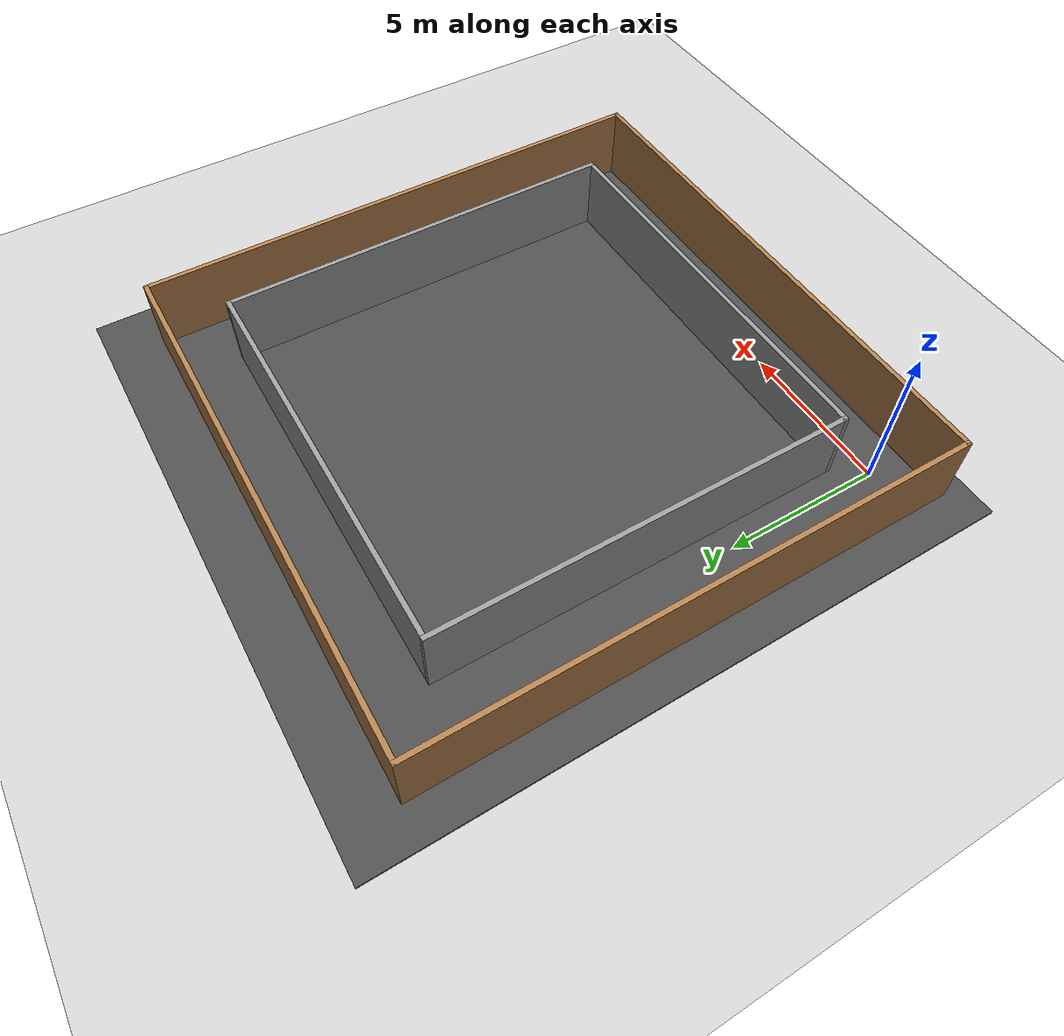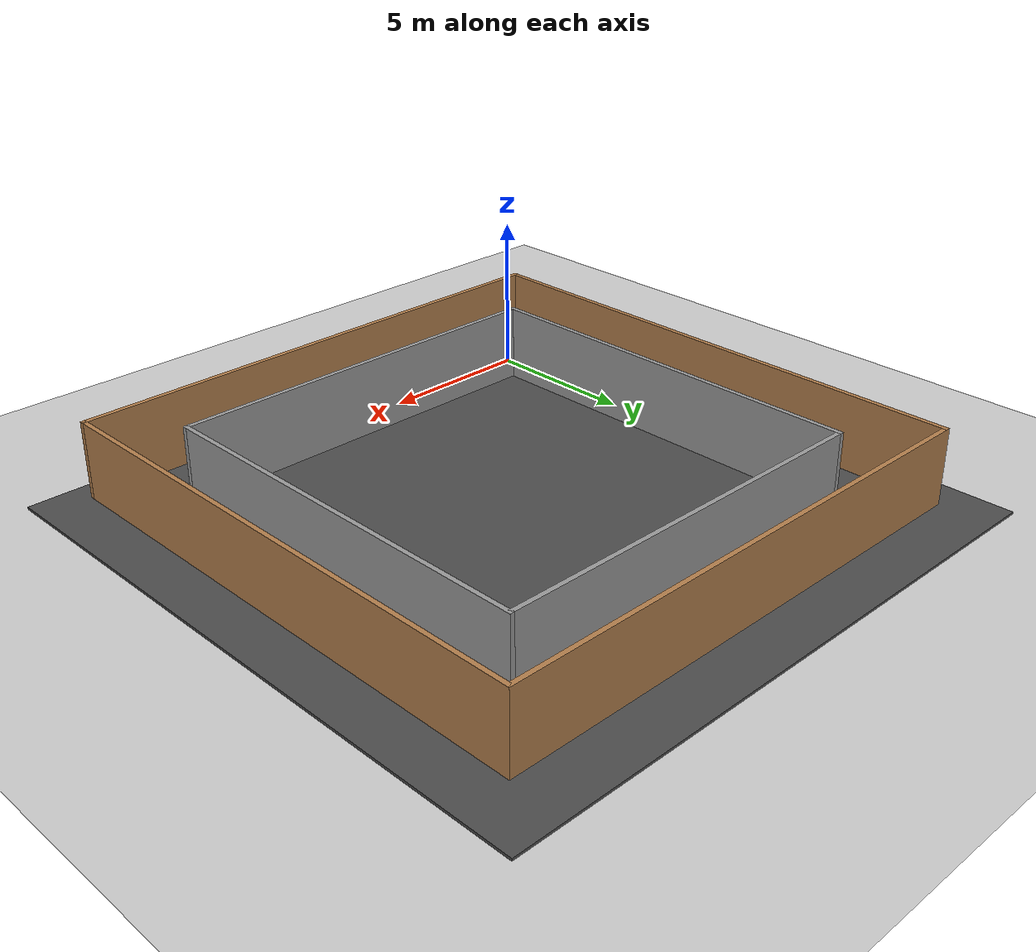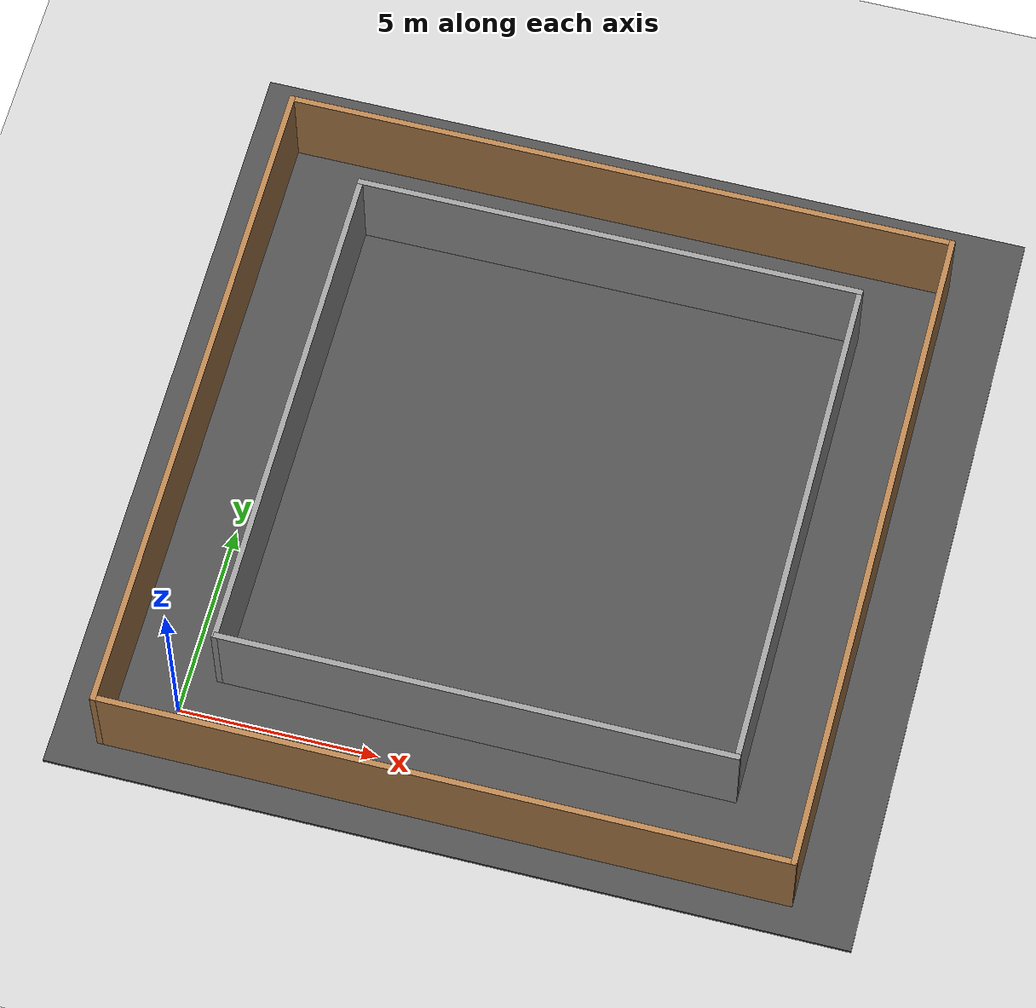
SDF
<sdf version="1.7">
 <world name="default">
  <light name="sun" type="directional">
   <pose>0 0 10 0 -0 0</pose>
   <diffuse>0.8 0.8 0.8 1</diffuse>
   <specular>0.2 0.2 0.2 1</specular>
   <attenuation>
    <range>1000</range>
    <constant>0.9</constant>
    <linear>0.01</linear>
    <quadratic>0.001</quadratic>
   </attenuation>
   <direction>-0.5 0.1 -0.9</direction>
   <spot><inner_angle>0</inner_angle><outer_angle>0</outer_angle><falloff>0</falloff></spot>
  </light>
  <model name="ground_plane">
   <static>1</static>
   <link name="link">
    <collision name="collision">
     <geometry><plane><normal>0 0 1</normal><size>100 100</size></plane></geometry>
     <surface>
      <contact><collide_bitmask>65535</collide_bitmask></contact>
      <friction><ode><mu>100</mu><mu2>50</mu2></ode></friction>
     </surface>
    </collision>
    <visual name="visual">
     <cast_shadows>0</cast_shadows>
     <geometry><plane><normal>0 0 1</normal><size>100 100</size></plane></geometry>
     <material>
      <script><uri>file://media/materials/scripts/gazebo.material</uri><name>Gazebo/Grey</name></script>
     </material>
    </visual>
   </link>
  </model>
  <gravity>0 0 -9.8</gravity>
  <magnetic_field>6e-06 2.3e-05 -4.2e-05</magnetic_field>
  <atmosphere type="adiabatic"/>
  <physics type="ode">
   <max_step_size>0.001</max_step_size>
   <real_time_factor>1</real_time_factor>
   <real_time_update_rate>1000</real_time_update_rate>
  </physics>
  <scene><ambient>0.4 0.4 0.4 1</ambient><background>0.7 0.7 0.7 1</background><shadows>1</shadows></scene>
  <spherical_coordinates>
   <surface_model>EARTH_WGS84</surface_model>
   <latitude_deg>0</latitude_deg>
   <longitude_deg>0</longitude_deg>
   <elevation>0</elevation>
   <heading_deg>0</heading_deg>
  </spherical_coordinates>
  <model name="square">
   <pose>10.6631 3.367 0 0 -0 0</pose>
   <link name="Wall_1">
    <collision name="Wall_1_Collision">
     <geometry><box><size>17.5 0.15 2.5</size></box></geometry>
     <pose>0 0 1.25 0 -0 0</pose>
    </collision>
    <visual name="Wall_1_Visual">
     <pose>0 0 1.25 0 -0 0</pose>
     <geometry><box><size>17.5 0.15 2.5</size></box></geometry>
     <material>
      <script><uri>file://media/materials/scripts/gazebo.material</uri><name>Gazebo/Wood</name></script>
      <ambient>1 1 1 1</ambient>
     </material>
     <meta><layer>0</layer></meta>
    </visual>
    <pose>4.85124 4.03127 0 0 -0 -1.5708</pose>
   </link>
   <link name="Wall_10">
    <collision name="Wall_10_Collision">
     <geometry><box><size>13.25 0.15 2.5</size></box></geometry>
     <pose>0 0 1.25 0 -0 0</pose>
    </collision>
    <visual name="Wall_10_Visual">
     <pose>0 0 1.25 0 -0 0</pose>
     <geometry><box><size>13.25 0.15 2.5</size></box></geometry>
     <material>
      <script><uri>file://media/materials/scripts/gazebo.material</uri><name>Gazebo/Grey</name></script>
      <ambient>1 1 1 1</ambient>
     </material>
     <meta><layer>0</layer></meta>
    </visual>
    <pose>-9.91213 4.21152 0 0 -0 1.5708</pose>
   </link>
   <link name="Wall_2">
    <collision name="Wall_2_Collision">
     <geometry><box><size>17.25 0.15 2.5</size></box></geometry>
     <pose>0 0 1.25 0 -0 0</pose>
    </collision>
    <visual name="Wall_2_Visual">
     <pose>0 0 1.25 0 -0 0</pose>
     <geometry><box><size>17.25 0.15 2.5</size></box></geometry>
     <material>
      <script><uri>file://media/materials/scripts/gazebo.material</uri><name>Gazebo/Wood</name></script>
      <ambient>1 1 1 1</ambient>
     </material>
     <meta><layer>0</layer></meta>
    </visual>
    <pose>-3.69876 -4.64372 0 0 -0 3.14159</pose>
   </link>
   <link name="Wall_3">
    <collision name="Wall_3_Collision">
     <geometry><box><size>17.5 0.15 2.5</size></box></geometry>
     <pose>0 0 1.25 0 -0 0</pose>
    </collision>
    <visual name="Wall_3_Visual">
     <pose>0 0 1.25 0 -0 0</pose>
     <geometry><box><size>17.5 0.15 2.5</size></box></geometry>
     <material>
      <script><uri>file://media/materials/scripts/gazebo.material</uri><name>Gazebo/Wood</name></script>
      <ambient>1 1 1 1</ambient>
     </material>
     <meta><layer>0</layer></meta>
    </visual>
    <pose>-12.2488 4.03127 0 0 -0 1.5708</pose>
   </link>
   <link name="Wall_5">
    <collision name="Wall_5_Collision">
     <geometry><box><size>17.25 0.15 2.5</size></box></geometry>
     <pose>0 0 1.25 0 -0 0</pose>
    </collision>
    <visual name="Wall_5_Visual">
     <pose>0 0 1.25 0 -0 0</pose>
     <geometry><box><size>17.25 0.15 2.5</size></box></geometry>
     <material>
      <script><uri>file://media/materials/scripts/gazebo.material</uri><name>Gazebo/Wood</name></script>
      <ambient>1 1 1 1</ambient>
     </material>
     <meta><layer>0</layer></meta>
    </visual>
    <pose>-3.69876 12.7063 0 0 -0 0</pose>
   </link>
   <link name="Wall_7">
    <collision name="Wall_7_Collision">
     <geometry><box><size>13 0.15 2.5</size></box></geometry>
     <pose>0 0 1.25 0 -0 0</pose>
    </collision>
    <visual name="Wall_7_Visual">
     <pose>0 0 1.25 0 -0 0</pose>
     <geometry><box><size>13 0.15 2.5</size></box></geometry>
     <material>
      <script><uri>file://media/materials/scripts/gazebo.material</uri><name>Gazebo/Grey</name></script>
      <ambient>1 1 1 1</ambient>
     </material>
     <meta><layer>0</layer></meta>
    </visual>
    <pose>-3.48713 10.7615 0 0 -0 0</pose>
   </link>
   <link name="Wall_8">
    <collision name="Wall_8_Collision">
     <geometry><box><size>13.25 0.15 2.5</size></box></geometry>
     <pose>0 0 1.25 0 -0 0</pose>
    </collision>
    <visual name="Wall_8_Visual">
     <pose>0 0 1.25 0 -0 0</pose>
     <geometry><box><size>13.25 0.15 2.5</size></box></geometry>
     <material>
      <script><uri>file://media/materials/scripts/gazebo.material</uri><name>Gazebo/Grey</name></script>
      <ambient>1 1 1 1</ambient>
     </material>
     <meta><layer>0</layer></meta>
    </visual>
    <pose>2.93787 4.21152 0 0 -0 -1.5708</pose>
   </link>
   <link name="Wall_9">
    <collision name="Wall_9_Collision">
     <geometry><box><size>13 0.15 2.5</size></box></geometry>
     <pose>0 0 1.25 0 -0 0</pose>
    </collision>
    <visual name="Wall_9_Visual">
     <pose>0 0 1.25 0 -0 0</pose>
     <geometry><box><size>13 0.15 2.5</size></box></geometry>
     <material>
      <script><uri>file://media/materials/scripts/gazebo.material</uri><name>Gazebo/Grey</name></script>
      <ambient>1 1 1 1</ambient>
     </material>
     <meta><layer>0</layer></meta>
    </visual>
    <pose>-3.48713 -2.33848 0 0 -0 3.14159</pose>
   </link>
   <static>1</static>
  </model>
  <model name="asphalt_plane">
   <static>1</static>
   <link name="link">
    <collision name="collision">
     <geometry><box><size>20 20 0.1</size></box></geometry>
     <surface><friction><ode><mu>0.5</mu><mu2>0.3</mu2></ode></friction></surface>
    </collision>
    <visual name="visual">
     <cast_shadows>0</cast_shadows>
     <geometry><box><size>20 20 0.1</size></box></geometry>
     <material>
      <script>
       <uri>model://asphalt_plane/materials/scripts</uri>
       <uri>model://asphalt_plane/materials/textures</uri>
       <name>vrc/asphalt</name>
      </script>
     </material>
    </visual>
   </link>
   <pose>7.20173 7.88372 0 0 -0 0</pose>
  </model>
 </world>
</sdf>
